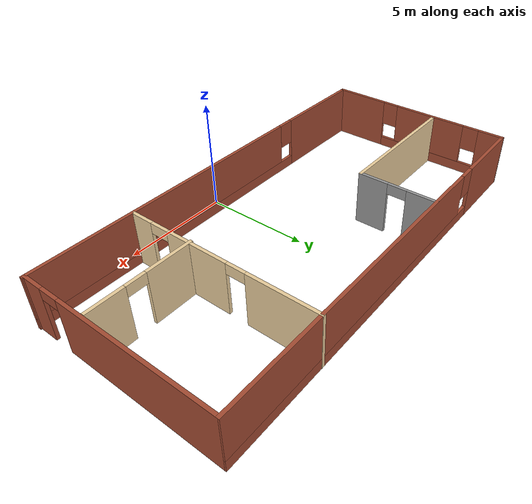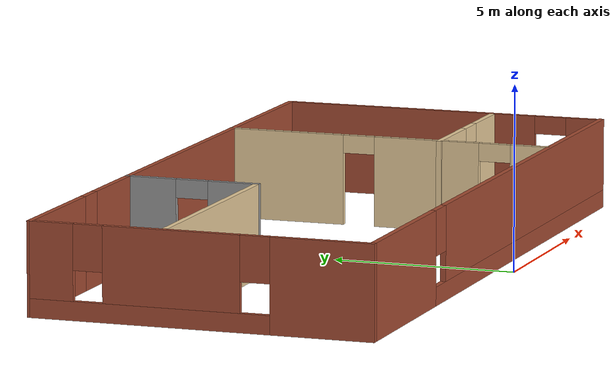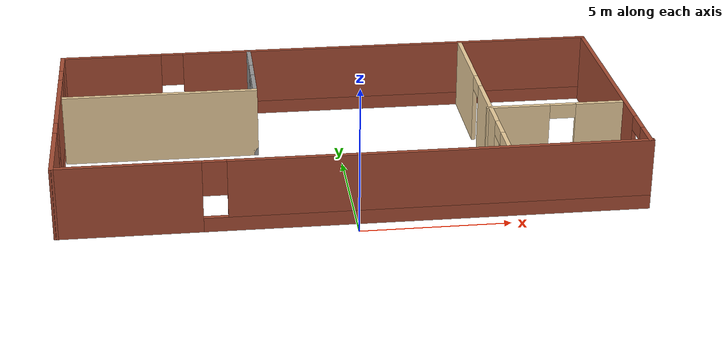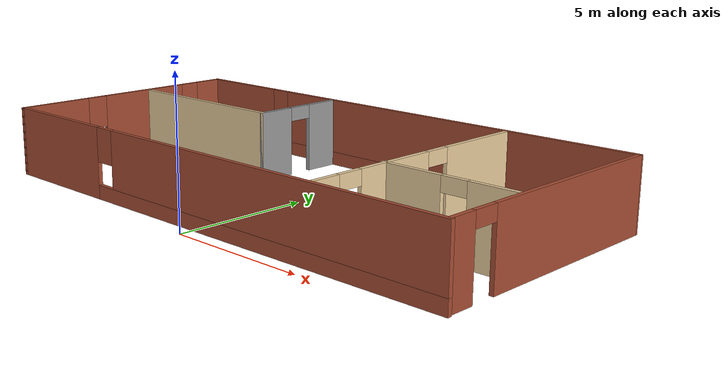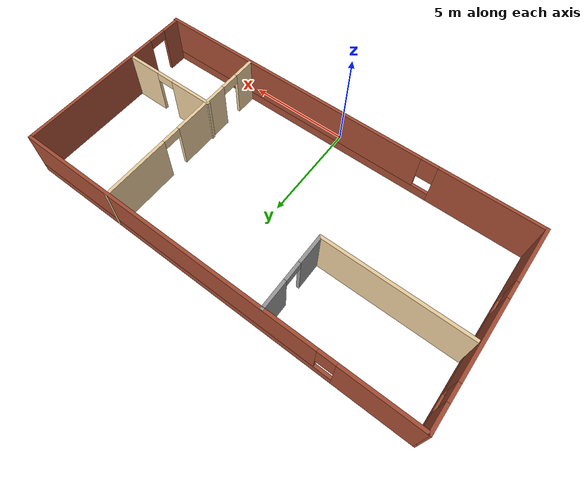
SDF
<?xml version='1.0'?>
<sdf version='1.7'>
  <model name='myflat'>
    <pose>-0.013216 4.91437 0 0 -0 0</pose>
    <link name='Wall_0'>
      <pose>0.034264 -4.33716 0 0 -0 0</pose>
      <visual name='Wall_0_Visual_0'>
        <pose>-7.38149 0 1.25 0 -0 0</pose>
        <geometry>
          <box>
            <size>4.73701 0.15 2.5</size>
          </box>
        </geometry>
        <material>
          <script>
            <uri>file://media/materials/scripts/gazebo.material</uri>
            <name>Gazebo/Bricks</name>
          </script>
          <ambient>0.760784 0.662745 0.627451 1</ambient>
        </material>
        <meta>
          <layer>0</layer>
        </meta>
      </visual>
      <collision name='Wall_0_Collision_0'>
        <geometry>
          <box>
            <size>4.73701 0.15 2.5</size>
          </box>
        </geometry>
        <pose>-7.38149 0 1.25 0 -0 0</pose>
      </collision>
      <visual name='Wall_0_Visual_1'>
        <pose>2.36851 0 0.25 0 -0 0</pose>
        <geometry>
          <box>
            <size>14.763 0.15 0.5</size>
          </box>
        </geometry>
        <material>
          <script>
            <uri>file://media/materials/scripts/gazebo.material</uri>
            <name>Gazebo/Bricks</name>
          </script>
          <ambient>0.760784 0.662745 0.627451 1</ambient>
        </material>
        <meta>
          <layer>0</layer>
        </meta>
      </visual>
      <collision name='Wall_0_Collision_1'>
        <geometry>
          <box>
            <size>14.763 0.15 0.5</size>
          </box>
        </geometry>
        <pose>2.36851 0 0.25 0 -0 0</pose>
      </collision>
      <visual name='Wall_0_Visual_2'>
        <pose>2.76851 0 1.5 0 -0 0</pose>
        <geometry>
          <box>
            <size>13.963 0.15 2</size>
          </box>
        </geometry>
        <material>
          <script>
            <uri>file://media/materials/scripts/gazebo.material</uri>
            <name>Gazebo/Bricks</name>
          </script>
          <ambient>0.760784 0.662745 0.627451 1</ambient>
        </material>
        <meta>
          <layer>0</layer>
        </meta>
      </visual>
      <collision name='Wall_0_Collision_2'>
        <geometry>
          <box>
            <size>13.963 0.15 2</size>
          </box>
        </geometry>
        <pose>2.76851 0 1.5 0 -0 0</pose>
      </collision>
      <visual name='Wall_0_Visual_3'>
        <pose>-4.61299 0 1.9 0 -0 0</pose>
        <geometry>
          <box>
            <size>0.8 0.15 1.2</size>
          </box>
        </geometry>
        <material>
          <script>
            <uri>file://media/materials/scripts/gazebo.material</uri>
            <name>Gazebo/Bricks</name>
          </script>
          <ambient>0.760784 0.662745 0.627451 1</ambient>
        </material>
        <meta>
          <layer>0</layer>
        </meta>
      </visual>
      <collision name='Wall_0_Collision_3'>
        <geometry>
          <box>
            <size>0.8 0.15 1.2</size>
          </box>
        </geometry>
        <pose>-4.61299 0 1.9 0 -0 0</pose>
      </collision>
    </link>
    <link name='Wall_12'>
      <collision name='Wall_12_Collision'>
        <geometry>
          <box>
            <size>6.75 0.15 2.5</size>
          </box>
        </geometry>
        <pose>0 0 1.25 0 -0 0</pose>
      </collision>
      <visual name='Wall_12_Visual'>
        <pose>0 0 1.25 0 -0 0</pose>
        <geometry>
          <box>
            <size>6.75 0.15 2.5</size>
          </box>
        </geometry>
        <material>
          <script>
            <uri>file://media/materials/scripts/gazebo.material</uri>
            <name>Gazebo/Grey</name>
          </script>
          <ambient>0.921569 0.807843 0.615686 1</ambient>
        </material>
        <meta>
          <layer>0</layer>
        </meta>
      </visual>
      <pose>-6.21738 1.21808 0 0 -0 0</pose>
    </link>
    <link name='Wall_2'>
      <pose>-9.70088 0.248176 0 0 -0 1.569</pose>
      <visual name='Wall_2_Visual_0'>
        <pose>-3.2738 0 1.25 0 -0 0</pose>
        <geometry>
          <box>
            <size>2.77307 0.15 2.5</size>
          </box>
        </geometry>
        <material>
          <script>
            <uri>file://media/materials/scripts/gazebo.material</uri>
            <name>Gazebo/Bricks</name>
          </script>
          <ambient>1 0.764706 0.305882 1</ambient>
        </material>
        <meta>
          <layer>0</layer>
        </meta>
      </visual>
      <collision name='Wall_2_Collision_0'>
        <geometry>
          <box>
            <size>2.77307 0.15 2.5</size>
          </box>
        </geometry>
        <pose>-3.2738 0 1.25 0 -0 0</pose>
      </collision>
      <visual name='Wall_2_Visual_1'>
        <pose>1.38654 0 0.25 0 -0 0</pose>
        <geometry>
          <box>
            <size>6.54761 0.15 0.5</size>
          </box>
        </geometry>
        <material>
          <script>
            <uri>file://media/materials/scripts/gazebo.material</uri>
            <name>Gazebo/Bricks</name>
          </script>
          <ambient>1 0.764706 0.305882 1</ambient>
        </material>
        <meta>
          <layer>0</layer>
        </meta>
      </visual>
      <collision name='Wall_2_Collision_1'>
        <geometry>
          <box>
            <size>6.54761 0.15 0.5</size>
          </box>
        </geometry>
        <pose>1.38654 0 0.25 0 -0 0</pose>
      </collision>
      <visual name='Wall_2_Visual_2'>
        <pose>0.759418 0 1.5 0 -0 0</pose>
        <geometry>
          <box>
            <size>3.69337 0.15 2</size>
          </box>
        </geometry>
        <material>
          <script>
            <uri>file://media/materials/scripts/gazebo.material</uri>
            <name>Gazebo/Bricks</name>
          </script>
          <ambient>1 0.764706 0.305882 1</ambient>
        </material>
        <meta>
          <layer>0</layer>
        </meta>
      </visual>
      <collision name='Wall_2_Collision_2'>
        <geometry>
          <box>
            <size>3.69337 0.15 2</size>
          </box>
        </geometry>
        <pose>0.759418 0 1.5 0 -0 0</pose>
      </collision>
      <visual name='Wall_2_Visual_3'>
        <pose>4.03322 0 1.5 0 -0 0</pose>
        <geometry>
          <box>
            <size>1.25424 0.15 2</size>
          </box>
        </geometry>
        <material>
          <script>
            <uri>file://media/materials/scripts/gazebo.material</uri>
            <name>Gazebo/Bricks</name>
          </script>
          <ambient>1 0.764706 0.305882 1</ambient>
        </material>
        <meta>
          <layer>0</layer>
        </meta>
      </visual>
      <collision name='Wall_2_Collision_3'>
        <geometry>
          <box>
            <size>1.25424 0.15 2</size>
          </box>
        </geometry>
        <pose>4.03322 0 1.5 0 -0 0</pose>
      </collision>
      <visual name='Wall_2_Visual_4'>
        <pose>-1.48727 0 1.9 0 -0 0</pose>
        <geometry>
          <box>
            <size>0.8 0.15 1.2</size>
          </box>
        </geometry>
        <material>
          <script>
            <uri>file://media/materials/scripts/gazebo.material</uri>
            <name>Gazebo/Bricks</name>
          </script>
          <ambient>1 0.764706 0.305882 1</ambient>
        </material>
        <meta>
          <layer>0</layer>
        </meta>
      </visual>
      <collision name='Wall_2_Collision_4'>
        <geometry>
          <box>
            <size>0.8 0.15 1.2</size>
          </box>
        </geometry>
        <pose>-1.48727 0 1.9 0 -0 0</pose>
      </collision>
      <visual name='Wall_2_Visual_5'>
        <pose>3.0061 0 1.9 0 -0 0</pose>
        <geometry>
          <box>
            <size>0.8 0.15 1.2</size>
          </box>
        </geometry>
        <material>
          <script>
            <uri>file://media/materials/scripts/gazebo.material</uri>
            <name>Gazebo/Bricks</name>
          </script>
          <ambient>1 0.764706 0.305882 1</ambient>
        </material>
        <meta>
          <layer>0</layer>
        </meta>
      </visual>
      <collision name='Wall_2_Collision_5'>
        <geometry>
          <box>
            <size>0.8 0.15 1.2</size>
          </box>
        </geometry>
        <pose>3.0061 0 1.9 0 -0 0</pose>
      </collision>
    </link>
    <link name='Wall_24'>
      <pose>-2.91738 3.01808 0 0 -0 1.5708</pose>
      <visual name='Wall_24_Visual_0'>
        <pose>-1.16252 0 1.25 0 -0 0</pose>
        <geometry>
          <box>
            <size>1.42496 0.15 2.5</size>
          </box>
        </geometry>
        <material>
          <script>
            <uri>file://media/materials/scripts/gazebo.material</uri>
            <name>Gazebo/Grey</name>
          </script>
          <ambient>1 1 1 1</ambient>
        </material>
        <meta>
          <layer>0</layer>
        </meta>
      </visual>
      <collision name='Wall_24_Collision_0'>
        <geometry>
          <box>
            <size>1.42496 0.15 2.5</size>
          </box>
        </geometry>
        <pose>-1.16252 0 1.25 0 -0 0</pose>
      </collision>
      <visual name='Wall_24_Visual_1'>
        <pose>1.16248 0 1.25 0 -0 0</pose>
        <geometry>
          <box>
            <size>1.42504 0.15 2.5</size>
          </box>
        </geometry>
        <material>
          <script>
            <uri>file://media/materials/scripts/gazebo.material</uri>
            <name>Gazebo/Grey</name>
          </script>
          <ambient>1 1 1 1</ambient>
        </material>
        <meta>
          <layer>0</layer>
        </meta>
      </visual>
      <collision name='Wall_24_Collision_1'>
        <geometry>
          <box>
            <size>1.42504 0.15 2.5</size>
          </box>
        </geometry>
        <pose>1.16248 0 1.25 0 -0 0</pose>
      </collision>
      <visual name='Wall_24_Visual_2'>
        <pose>-4.4e-05 0 2.25 0 -0 0</pose>
        <geometry>
          <box>
            <size>0.9 0.15 0.5</size>
          </box>
        </geometry>
        <material>
          <script>
            <uri>file://media/materials/scripts/gazebo.material</uri>
            <name>Gazebo/Grey</name>
          </script>
          <ambient>1 1 1 1</ambient>
        </material>
        <meta>
          <layer>0</layer>
        </meta>
      </visual>
      <collision name='Wall_24_Collision_2'>
        <geometry>
          <box>
            <size>0.9 0.15 0.5</size>
          </box>
        </geometry>
        <pose>-4.4e-05 0 2.25 0 -0 0</pose>
      </collision>
    </link>
    <link name='Wall_3'>
      <pose>-0.017626 4.83351 0 0 -0 0</pose>
      <visual name='Wall_3_Visual_0'>
        <pose>-7.93282 0 1.25 0 -0 0</pose>
        <geometry>
          <box>
            <size>3.63437 0.15 2.5</size>
          </box>
        </geometry>
        <material>
          <script>
            <uri>file://media/materials/scripts/gazebo.material</uri>
            <name>Gazebo/Bricks</name>
          </script>
          <ambient>1 0.764706 0.305882 1</ambient>
        </material>
        <meta>
          <layer>0</layer>
        </meta>
      </visual>
      <collision name='Wall_3_Collision_0'>
        <geometry>
          <box>
            <size>3.63437 0.15 2.5</size>
          </box>
        </geometry>
        <pose>-7.93282 0 1.25 0 -0 0</pose>
      </collision>
      <visual name='Wall_3_Visual_1'>
        <pose>1.81718 0 0.25 0 -0 0</pose>
        <geometry>
          <box>
            <size>15.8656 0.15 0.5</size>
          </box>
        </geometry>
        <material>
          <script>
            <uri>file://media/materials/scripts/gazebo.material</uri>
            <name>Gazebo/Bricks</name>
          </script>
          <ambient>1 0.764706 0.305882 1</ambient>
        </material>
        <meta>
          <layer>0</layer>
        </meta>
      </visual>
      <collision name='Wall_3_Collision_1'>
        <geometry>
          <box>
            <size>15.8656 0.15 0.5</size>
          </box>
        </geometry>
        <pose>1.81718 0 0.25 0 -0 0</pose>
      </collision>
      <visual name='Wall_3_Visual_2'>
        <pose>2.21718 0 1.5 0 -0 0</pose>
        <geometry>
          <box>
            <size>15.0656 0.15 2</size>
          </box>
        </geometry>
        <material>
          <script>
            <uri>file://media/materials/scripts/gazebo.material</uri>
            <name>Gazebo/Bricks</name>
          </script>
          <ambient>1 0.764706 0.305882 1</ambient>
        </material>
        <meta>
          <layer>0</layer>
        </meta>
      </visual>
      <collision name='Wall_3_Collision_2'>
        <geometry>
          <box>
            <size>15.0656 0.15 2</size>
          </box>
        </geometry>
        <pose>2.21718 0 1.5 0 -0 0</pose>
      </collision>
      <visual name='Wall_3_Visual_3'>
        <pose>-5.71563 0 1.9 0 -0 0</pose>
        <geometry>
          <box>
            <size>0.8 0.15 1.2</size>
          </box>
        </geometry>
        <material>
          <script>
            <uri>file://media/materials/scripts/gazebo.material</uri>
            <name>Gazebo/Bricks</name>
          </script>
          <ambient>1 0.764706 0.305882 1</ambient>
        </material>
        <meta>
          <layer>0</layer>
        </meta>
      </visual>
      <collision name='Wall_3_Collision_3'>
        <geometry>
          <box>
            <size>0.8 0.15 1.2</size>
          </box>
        </geometry>
        <pose>-5.71563 0 1.9 0 -0 0</pose>
      </collision>
    </link>
    <link name='Wall_32'>
      <pose>4.9649 0.289367 0 0 -0 1.5708</pose>
      <visual name='Wall_32_Visual_0'>
        <pose>-4.07196 0 1.25 0 -0 0</pose>
        <geometry>
          <box>
            <size>1.10608 0.15 2.5</size>
          </box>
        </geometry>
        <material>
          <script>
            <uri>file://media/materials/scripts/gazebo.material</uri>
            <name>Gazebo/Grey</name>
          </script>
          <ambient>0.921569 0.807843 0.615686 1</ambient>
        </material>
        <meta>
          <layer>0</layer>
        </meta>
      </visual>
      <collision name='Wall_32_Collision_0'>
        <geometry>
          <box>
            <size>1.10608 0.15 2.5</size>
          </box>
        </geometry>
        <pose>-4.07196 0 1.25 0 -0 0</pose>
      </collision>
      <visual name='Wall_32_Visual_1'>
        <pose>-1.1197 0 1.25 0 -0 0</pose>
        <geometry>
          <box>
            <size>2.99843 0.15 2.5</size>
          </box>
        </geometry>
        <material>
          <script>
            <uri>file://media/materials/scripts/gazebo.material</uri>
            <name>Gazebo/Grey</name>
          </script>
          <ambient>0.921569 0.807843 0.615686 1</ambient>
        </material>
        <meta>
          <layer>0</layer>
        </meta>
      </visual>
      <collision name='Wall_32_Collision_1'>
        <geometry>
          <box>
            <size>2.99843 0.15 2.5</size>
          </box>
        </geometry>
        <pose>-1.1197 0 1.25 0 -0 0</pose>
      </collision>
      <visual name='Wall_32_Visual_2'>
        <pose>2.95225 0 1.25 0 -0 0</pose>
        <geometry>
          <box>
            <size>3.34549 0.15 2.5</size>
          </box>
        </geometry>
        <material>
          <script>
            <uri>file://media/materials/scripts/gazebo.material</uri>
            <name>Gazebo/Grey</name>
          </script>
          <ambient>0.921569 0.807843 0.615686 1</ambient>
        </material>
        <meta>
          <layer>0</layer>
        </meta>
      </visual>
      <collision name='Wall_32_Collision_2'>
        <geometry>
          <box>
            <size>3.34549 0.15 2.5</size>
          </box>
        </geometry>
        <pose>2.95225 0 1.25 0 -0 0</pose>
      </collision>
      <visual name='Wall_32_Visual_3'>
        <pose>-3.06892 0 2.25 0 -0 0</pose>
        <geometry>
          <box>
            <size>0.9 0.15 0.5</size>
          </box>
        </geometry>
        <material>
          <script>
            <uri>file://media/materials/scripts/gazebo.material</uri>
            <name>Gazebo/Grey</name>
          </script>
          <ambient>0.921569 0.807843 0.615686 1</ambient>
        </material>
        <meta>
          <layer>0</layer>
        </meta>
      </visual>
      <collision name='Wall_32_Collision_3'>
        <geometry>
          <box>
            <size>0.9 0.15 0.5</size>
          </box>
        </geometry>
        <pose>-3.06892 0 2.25 0 -0 0</pose>
      </collision>
      <visual name='Wall_32_Visual_4'>
        <pose>0.829509 0 2.25 0 -0 0</pose>
        <geometry>
          <box>
            <size>0.9 0.15 0.5</size>
          </box>
        </geometry>
        <material>
          <script>
            <uri>file://media/materials/scripts/gazebo.material</uri>
            <name>Gazebo/Grey</name>
          </script>
          <ambient>0.921569 0.807843 0.615686 1</ambient>
        </material>
        <meta>
          <layer>0</layer>
        </meta>
      </visual>
      <collision name='Wall_32_Collision_4'>
        <geometry>
          <box>
            <size>0.9 0.15 0.5</size>
          </box>
        </geometry>
        <pose>0.829509 0 2.25 0 -0 0</pose>
      </collision>
    </link>
    <link name='Wall_34'>
      <pose>7.1965 -1.2065 0 0 -0 0</pose>
      <visual name='Wall_34_Visual_0'>
        <pose>-1.27792 0 1.25 0 -0 0</pose>
        <geometry>
          <box>
            <size>2.19417 0.15 2.5</size>
          </box>
        </geometry>
        <material>
          <script>
            <uri>file://media/materials/scripts/gazebo.material</uri>
            <name>Gazebo/Grey</name>
          </script>
          <ambient>0.921569 0.807843 0.615686 1</ambient>
        </material>
        <meta>
          <layer>0</layer>
        </meta>
      </visual>
      <collision name='Wall_34_Collision_0'>
        <geometry>
          <box>
            <size>2.19417 0.15 2.5</size>
          </box>
        </geometry>
        <pose>-1.27792 0 1.25 0 -0 0</pose>
      </collision>
      <visual name='Wall_34_Visual_1'>
        <pose>1.54708 0 1.25 0 -0 0</pose>
        <geometry>
          <box>
            <size>1.65583 0.15 2.5</size>
          </box>
        </geometry>
        <material>
          <script>
            <uri>file://media/materials/scripts/gazebo.material</uri>
            <name>Gazebo/Grey</name>
          </script>
          <ambient>0.921569 0.807843 0.615686 1</ambient>
        </material>
        <meta>
          <layer>0</layer>
        </meta>
      </visual>
      <collision name='Wall_34_Collision_1'>
        <geometry>
          <box>
            <size>1.65583 0.15 2.5</size>
          </box>
        </geometry>
        <pose>1.54708 0 1.25 0 -0 0</pose>
      </collision>
      <visual name='Wall_34_Visual_2'>
        <pose>0.269166 0 2.25 0 -0 0</pose>
        <geometry>
          <box>
            <size>0.9 0.15 0.5</size>
          </box>
        </geometry>
        <material>
          <script>
            <uri>file://media/materials/scripts/gazebo.material</uri>
            <name>Gazebo/Grey</name>
          </script>
          <ambient>0.921569 0.807843 0.615686 1</ambient>
        </material>
        <meta>
          <layer>0</layer>
        </meta>
      </visual>
      <collision name='Wall_34_Collision_2'>
        <geometry>
          <box>
            <size>0.9 0.15 0.5</size>
          </box>
        </geometry>
        <pose>0.269166 0 2.25 0 -0 0</pose>
      </collision>
    </link>
    <link name='Wall_4'>
      <pose>9.65737 0.215115 0 0 -0 -1.5708</pose>
      <visual name='Wall_4_Visual_0'>
        <pose>-0.976622 0 1.25 0 -0 0</pose>
        <geometry>
          <box>
            <size>7.29676 0.15 2.5</size>
          </box>
        </geometry>
        <material>
          <script>
            <uri>file://media/materials/scripts/gazebo.material</uri>
            <name>Gazebo/Bricks</name>
          </script>
          <ambient>1 0.764706 0.305882 1</ambient>
        </material>
        <meta>
          <layer>0</layer>
        </meta>
      </visual>
      <collision name='Wall_4_Collision_0'>
        <geometry>
          <box>
            <size>7.29676 0.15 2.5</size>
          </box>
        </geometry>
        <pose>-0.976622 0 1.25 0 -0 0</pose>
      </collision>
      <visual name='Wall_4_Visual_1'>
        <pose>4.09838 0 1.25 0 -0 0</pose>
        <geometry>
          <box>
            <size>1.05324 0.15 2.5</size>
          </box>
        </geometry>
        <material>
          <script>
            <uri>file://media/materials/scripts/gazebo.material</uri>
            <name>Gazebo/Bricks</name>
          </script>
          <ambient>1 0.764706 0.305882 1</ambient>
        </material>
        <meta>
          <layer>0</layer>
        </meta>
      </visual>
      <collision name='Wall_4_Collision_1'>
        <geometry>
          <box>
            <size>1.05324 0.15 2.5</size>
          </box>
        </geometry>
        <pose>4.09838 0 1.25 0 -0 0</pose>
      </collision>
      <visual name='Wall_4_Visual_2'>
        <pose>3.12176 0 2.25 0 -0 0</pose>
        <geometry>
          <box>
            <size>0.9 0.15 0.5</size>
          </box>
        </geometry>
        <material>
          <script>
            <uri>file://media/materials/scripts/gazebo.material</uri>
            <name>Gazebo/Bricks</name>
          </script>
          <ambient>1 0.764706 0.305882 1</ambient>
        </material>
        <meta>
          <layer>0</layer>
        </meta>
      </visual>
      <collision name='Wall_4_Collision_2'>
        <geometry>
          <box>
            <size>0.9 0.15 0.5</size>
          </box>
        </geometry>
        <pose>3.12176 0 2.25 0 -0 0</pose>
      </collision>
    </link>
    <static>1</static>
  </model>
</sdf>
